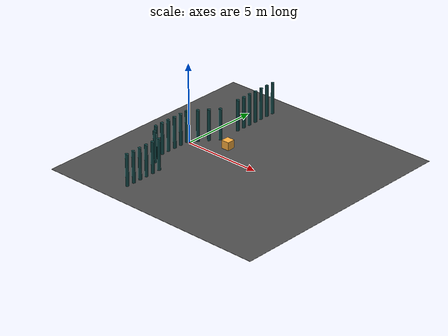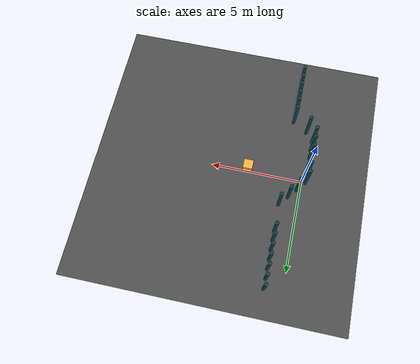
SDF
<sdf version="1.6">
 <world name="default">
  <light name="sun" type="directional">
   <pose>0 0 10 0 -0 0</pose>
   <diffuse>0.8 0.8 0.8 1</diffuse>
   <specular>0.2 0.2 0.2 1</specular>
   <attenuation>
    <range>1000</range>
    <constant>0.9</constant>
    <linear>0.01</linear>
    <quadratic>0.001</quadratic>
   </attenuation>
   <direction>-0.5 0.1 -0.9</direction>
  </light>
  <plugin name="ros_interface_plugin" filename="librotors_gazebo_ros_interface_plugin.so"/>
  <gravity>0 0 -9.8</gravity>
  <magnetic_field>6e-06 2.3e-05 -4.2e-05</magnetic_field>
  <atmosphere type="adiabatic"/>
  <physics name="default_physics" default="0" type="ode">
   <max_step_size>0.001</max_step_size>
   <real_time_factor>1</real_time_factor>
   <real_time_update_rate>1000</real_time_update_rate>
  </physics>
  <scene>
   <ambient>0.78 0.78 0.78 1</ambient>
   <background>0.35 0.35 0.35 1</background>
   <shadows>1</shadows>
  </scene>
  <spherical_coordinates>
   <surface_model>EARTH_WGS84</surface_model>
   <latitude_deg>0</latitude_deg>
   <longitude_deg>0</longitude_deg>
   <elevation>0</elevation>
   <heading_deg>0</heading_deg>
  </spherical_coordinates>
  <model name="env_plane">
   <link name="link">
    <inertial>
     <mass>1</mass>
     <inertia><ixx>1</ixx><ixy>0</ixy><ixz>0</ixz><iyy>1</iyy><iyz>0</iyz><izz>1</izz></inertia>
    </inertial>
    <visual name="visual">
     <cast_shadows>0</cast_shadows>
     <geometry><box><size>15 15 0.01</size></box></geometry>
     <material>
      <script>
       <uri>model://asphalt_plane/materials/scripts</uri>
       <uri>model://asphalt_plane/materials/textures</uri>
       <name>vrc/asphalt</name>
      </script>
      <shader type="pixel"><normal_map>__default__</normal_map></shader>
      <diffuse>0.7 0.7 0.7 1</diffuse>
      <ambient>0.5 0.5 0.5 1</ambient>
      <specular>0.5 0.5 0.5 1</specular>
      <emissive>0.7 0.7 0.7 1</emissive>
     </material>
    </visual>
    <collision name="collision">
     <geometry><box><size>20 20 0.1</size></box></geometry>
     <surface>
      <friction>
       <ode><mu>1</mu><mu2>1</mu2><fdir1>0 0 0</fdir1><slip1>0</slip1><slip2>0</slip2></ode>
       <torsional>
        <coefficient>1</coefficient>
        <patch_radius>0</patch_radius>
        <surface_radius>0</surface_radius>
        <use_patch_radius>1</use_patch_radius>
        <ode><slip>0</slip></ode>
       </torsional>
      </friction>
      <bounce><restitution_coefficient>0</restitution_coefficient><threshold>1e+06</threshold></bounce>
      <contact>
       <collide_without_contact>0</collide_without_contact>
       <collide_without_contact_bitmask>1</collide_without_contact_bitmask>
       <collide_bitmask>1</collide_bitmask>
       <ode>
        <soft_cfm>0</soft_cfm>
        <soft_erp>0.2</soft_erp>
        <kp>1e+13</kp>
        <kd>1</kd>
        <max_vel>0.01</max_vel>
        <min_depth>0</min_depth>
       </ode>
       <bullet>
        <split_impulse>1</split_impulse>
        <split_impulse_penetration_threshold>-0.01</split_impulse_penetration_threshold>
        <soft_cfm>0</soft_cfm>
        <soft_erp>0.2</soft_erp>
        <kp>1e+13</kp>
        <kd>1</kd>
       </bullet>
      </contact>
     </surface>
    </collision>
   </link>
   <static>1</static>
   <pose>4 0 0 0 -0 0</pose>
  </model>
  <model name="obstacle">
   <link name="link">
    <inertial>
     <mass>112.569</mass>
     <inertia><ixx>33.2512</ixx><ixy>0</ixy><ixz>0</ixz><iyy>33.2512</iyy><iyz>0</iyz><izz>0.537779</izz></inertia>
    </inertial>
    <visual name="visual">
     <geometry><cylinder><radius>0.1</radius><length>2</length></cylinder></geometry>
     <material>
      <script><name>Gazebo/Grey</name><uri>file://media/materials/scripts/gazebo.material</uri></script>
      <shader type="pixel"><normal_map>__default__</normal_map></shader>
      <ambient>0.05 0.25 0.25 1</ambient>
      <diffuse>0.3 0.3 0.3 1</diffuse>
      <specular>0.01 0.01 0.01 1</specular>
      <emissive>0.1 0.1 0.1 1</emissive>
      <lighting>1</lighting>
     </material>
    </visual>
    <collision name="collision">
     <geometry><cylinder><radius>0.097748</radius><length>1.87509</length></cylinder></geometry>
     <surface>
      <friction>
       <ode><mu>1</mu><mu2>1</mu2><fdir1>0 0 0</fdir1><slip1>0</slip1><slip2>0</slip2></ode>
       <torsional>
        <coefficient>1</coefficient>
        <patch_radius>0</patch_radius>
        <surface_radius>0</surface_radius>
        <use_patch_radius>1</use_patch_radius>
        <ode><slip>0</slip></ode>
       </torsional>
      </friction>
      <bounce><restitution_coefficient>0</restitution_coefficient><threshold>1e+06</threshold></bounce>
      <contact>
       <collide_without_contact>0</collide_without_contact>
       <collide_without_contact_bitmask>1</collide_without_contact_bitmask>
       <collide_bitmask>1</collide_bitmask>
       <ode>
        <soft_cfm>0</soft_cfm>
        <soft_erp>0.2</soft_erp>
        <kp>1e+13</kp>
        <kd>1</kd>
        <max_vel>0.01</max_vel>
        <min_depth>0</min_depth>
       </ode>
       <bullet>
        <split_impulse>1</split_impulse>
        <split_impulse_penetration_threshold>-0.01</split_impulse_penetration_threshold>
        <soft_cfm>0</soft_cfm>
        <soft_erp>0.2</soft_erp>
        <kp>1e+13</kp>
        <kd>1</kd>
       </bullet>
      </contact>
     </surface>
    </collision>
   </link>
   <static>0</static>
   <pose>-0.199973 -0.499965 0.987542 -5.4e-05 2.7e-05 0.007392</pose>
  </model>
  <model name="obstacle_clone">
   <link name="link">
    <inertial>
     <mass>112.569</mass>
     <inertia><ixx>33.2512</ixx><ixy>0</ixy><ixz>0</ixz><iyy>33.2512</iyy><iyz>0</iyz><izz>0.537779</izz></inertia>
    </inertial>
    <visual name="visual">
     <geometry><cylinder><radius>0.1</radius><length>2</length></cylinder></geometry>
     <material>
      <script><name>Gazebo/Grey</name><uri>file://media/materials/scripts/gazebo.material</uri></script>
      <shader type="pixel"><normal_map>__default__</normal_map></shader>
      <ambient>0.05 0.25 0.25 1</ambient>
      <diffuse>0.3 0.3 0.3 1</diffuse>
      <specular>0.01 0.01 0.01 1</specular>
      <emissive>0.1 0.1 0.1 1</emissive>
      <lighting>1</lighting>
     </material>
    </visual>
    <collision name="collision">
     <geometry><cylinder><radius>0.097748</radius><length>1.87509</length></cylinder></geometry>
     <surface>
      <friction>
       <ode><mu>1</mu><mu2>1</mu2><fdir1>0 0 0</fdir1><slip1>0</slip1><slip2>0</slip2></ode>
       <torsional>
        <coefficient>1</coefficient>
        <patch_radius>0</patch_radius>
        <surface_radius>0</surface_radius>
        <use_patch_radius>1</use_patch_radius>
        <ode><slip>0</slip></ode>
       </torsional>
      </friction>
      <bounce><restitution_coefficient>0</restitution_coefficient><threshold>1e+06</threshold></bounce>
      <contact>
       <collide_without_contact>0</collide_without_contact>
       <collide_without_contact_bitmask>1</collide_without_contact_bitmask>
       <collide_bitmask>1</collide_bitmask>
       <ode>
        <soft_cfm>0</soft_cfm>
        <soft_erp>0.2</soft_erp>
        <kp>1e+13</kp>
        <kd>1</kd>
        <max_vel>0.01</max_vel>
        <min_depth>0</min_depth>
       </ode>
       <bullet>
        <split_impulse>1</split_impulse>
        <split_impulse_penetration_threshold>-0.01</split_impulse_penetration_threshold>
        <soft_cfm>0</soft_cfm>
        <soft_erp>0.2</soft_erp>
        <kp>1e+13</kp>
        <kd>1</kd>
       </bullet>
      </contact>
     </surface>
    </collision>
   </link>
   <static>0</static>
   <pose>1.00037 4.00004 0.987551 -6.1e-05 2.6e-05 0.007768</pose>
  </model>
  <model name="obstacle_clone_0">
   <link name="link">
    <inertial>
     <mass>112.569</mass>
     <inertia><ixx>33.2512</ixx><ixy>0</ixy><ixz>0</ixz><iyy>33.2512</iyy><iyz>0</iyz><izz>0.537779</izz></inertia>
    </inertial>
    <visual name="visual">
     <geometry><cylinder><radius>0.1</radius><length>2</length></cylinder></geometry>
     <material>
      <script><name>Gazebo/Grey</name><uri>file://media/materials/scripts/gazebo.material</uri></script>
      <shader type="pixel"><normal_map>__default__</normal_map></shader>
      <ambient>0.05 0.25 0.25 1</ambient>
      <diffuse>0.3 0.3 0.3 1</diffuse>
      <specular>0.01 0.01 0.01 1</specular>
      <emissive>0.1 0.1 0.1 1</emissive>
      <lighting>1</lighting>
     </material>
    </visual>
    <collision name="collision">
     <geometry><cylinder><radius>0.097748</radius><length>1.87509</length></cylinder></geometry>
     <surface>
      <friction>
       <ode><mu>1</mu><mu2>1</mu2><fdir1>0 0 0</fdir1><slip1>0</slip1><slip2>0</slip2></ode>
       <torsional>
        <coefficient>1</coefficient>
        <patch_radius>0</patch_radius>
        <surface_radius>0</surface_radius>
        <use_patch_radius>1</use_patch_radius>
        <ode><slip>0</slip></ode>
       </torsional>
      </friction>
      <bounce><restitution_coefficient>0</restitution_coefficient><threshold>1e+06</threshold></bounce>
      <contact>
       <collide_without_contact>0</collide_without_contact>
       <collide_without_contact_bitmask>1</collide_without_contact_bitmask>
       <collide_bitmask>1</collide_bitmask>
       <ode>
        <soft_cfm>0</soft_cfm>
        <soft_erp>0.2</soft_erp>
        <kp>1e+13</kp>
        <kd>1</kd>
        <max_vel>0.01</max_vel>
        <min_depth>0</min_depth>
       </ode>
       <bullet>
        <split_impulse>1</split_impulse>
        <split_impulse_penetration_threshold>-0.01</split_impulse_penetration_threshold>
        <soft_cfm>0</soft_cfm>
        <soft_erp>0.2</soft_erp>
        <kp>1e+13</kp>
        <kd>1</kd>
       </bullet>
      </contact>
     </surface>
    </collision>
   </link>
   <static>0</static>
   <pose>1.03015 1.50004 0.987542 -5.8e-05 2.8e-05 0.00727</pose>
  </model>
  <model name="obstacle_clone_1">
   <link name="link">
    <inertial>
     <mass>112.569</mass>
     <inertia><ixx>33.2512</ixx><ixy>0</ixy><ixz>0</ixz><iyy>33.2512</iyy><iyz>0</iyz><izz>0.537779</izz></inertia>
    </inertial>
    <visual name="visual">
     <geometry><cylinder><radius>0.1</radius><length>2</length></cylinder></geometry>
     <material>
      <script><name>Gazebo/Grey</name><uri>file://media/materials/scripts/gazebo.material</uri></script>
      <shader type="pixel"><normal_map>__default__</normal_map></shader>
      <ambient>0.05 0.25 0.25 1</ambient>
      <diffuse>0.3 0.3 0.3 1</diffuse>
      <specular>0.01 0.01 0.01 1</specular>
      <emissive>0.1 0.1 0.1 1</emissive>
      <lighting>1</lighting>
     </material>
    </visual>
    <collision name="collision">
     <geometry><cylinder><radius>0.097748</radius><length>1.87509</length></cylinder></geometry>
     <surface>
      <friction>
       <ode><mu>1</mu><mu2>1</mu2><fdir1>0 0 0</fdir1><slip1>0</slip1><slip2>0</slip2></ode>
       <torsional>
        <coefficient>1</coefficient>
        <patch_radius>0</patch_radius>
        <surface_radius>0</surface_radius>
        <use_patch_radius>1</use_patch_radius>
        <ode><slip>0</slip></ode>
       </torsional>
      </friction>
      <bounce><restitution_coefficient>0</restitution_coefficient><threshold>1e+06</threshold></bounce>
      <contact>
       <collide_without_contact>0</collide_without_contact>
       <collide_without_contact_bitmask>1</collide_without_contact_bitmask>
       <collide_bitmask>1</collide_bitmask>
       <ode>
        <soft_cfm>0</soft_cfm>
        <soft_erp>0.2</soft_erp>
        <kp>1e+13</kp>
        <kd>1</kd>
        <max_vel>0.01</max_vel>
        <min_depth>0</min_depth>
       </ode>
       <bullet>
        <split_impulse>1</split_impulse>
        <split_impulse_penetration_threshold>-0.01</split_impulse_penetration_threshold>
        <soft_cfm>0</soft_cfm>
        <soft_erp>0.2</soft_erp>
        <kp>1e+13</kp>
        <kd>1</kd>
       </bullet>
      </contact>
     </surface>
    </collision>
   </link>
   <static>0</static>
   <pose>-0.199987 -1.99996 0.987551 -5.6e-05 2.5e-05 0.012254</pose>
  </model>
  <model name="obstacle_clone_4">
   <link name="link">
    <inertial>
     <mass>112.569</mass>
     <inertia><ixx>33.2512</ixx><ixy>0</ixy><ixz>0</ixz><iyy>33.2512</iyy><iyz>0</iyz><izz>0.537779</izz></inertia>
    </inertial>
    <visual name="visual">
     <geometry><cylinder><radius>0.1</radius><length>2</length></cylinder></geometry>
     <material>
      <script><name>Gazebo/Grey</name><uri>file://media/materials/scripts/gazebo.material</uri></script>
      <shader type="pixel"><normal_map>__default__</normal_map></shader>
      <ambient>0.05 0.25 0.25 1</ambient>
      <diffuse>0.3 0.3 0.3 1</diffuse>
      <specular>0.01 0.01 0.01 1</specular>
      <emissive>0.1 0.1 0.1 1</emissive>
      <lighting>1</lighting>
     </material>
    </visual>
    <collision name="collision">
     <geometry><cylinder><radius>0.097748</radius><length>1.87509</length></cylinder></geometry>
     <surface>
      <friction>
       <ode><mu>1</mu><mu2>1</mu2><fdir1>0 0 0</fdir1><slip1>0</slip1><slip2>0</slip2></ode>
       <torsional>
        <coefficient>1</coefficient>
        <patch_radius>0</patch_radius>
        <surface_radius>0</surface_radius>
        <use_patch_radius>1</use_patch_radius>
        <ode><slip>0</slip></ode>
       </torsional>
      </friction>
      <bounce><restitution_coefficient>0</restitution_coefficient><threshold>1e+06</threshold></bounce>
      <contact>
       <collide_without_contact>0</collide_without_contact>
       <collide_without_contact_bitmask>1</collide_without_contact_bitmask>
       <collide_bitmask>1</collide_bitmask>
       <ode>
        <soft_cfm>0</soft_cfm>
        <soft_erp>0.2</soft_erp>
        <kp>1e+13</kp>
        <kd>1</kd>
        <max_vel>0.01</max_vel>
        <min_depth>0</min_depth>
       </ode>
       <bullet>
        <split_impulse>1</split_impulse>
        <split_impulse_penetration_threshold>-0.01</split_impulse_penetration_threshold>
        <soft_cfm>0</soft_cfm>
        <soft_erp>0.2</soft_erp>
        <kp>1e+13</kp>
        <kd>1</kd>
       </bullet>
      </contact>
     </surface>
    </collision>
   </link>
   <static>0</static>
   <pose>1.00021 5.00003 0.987542 -5.5e-05 2.6e-05 0.012053</pose>
  </model>
  <model name="obstacle_clone_7">
   <link name="link">
    <inertial>
     <mass>112.569</mass>
     <inertia><ixx>33.2512</ixx><ixy>0</ixy><ixz>0</ixz><iyy>33.2512</iyy><iyz>0</iyz><izz>0.537779</izz></inertia>
    </inertial>
    <visual name="visual">
     <geometry><cylinder><radius>0.1</radius><length>2</length></cylinder></geometry>
     <material>
      <script><name>Gazebo/Grey</name><uri>file://media/materials/scripts/gazebo.material</uri></script>
      <shader type="pixel"><normal_map>__default__</normal_map></shader>
      <ambient>0.05 0.25 0.25 1</ambient>
      <diffuse>0.3 0.3 0.3 1</diffuse>
      <specular>0.01 0.01 0.01 1</specular>
      <emissive>0.1 0.1 0.1 1</emissive>
      <lighting>1</lighting>
     </material>
    </visual>
    <collision name="collision">
     <geometry><cylinder><radius>0.097748</radius><length>1.87509</length></cylinder></geometry>
     <surface>
      <friction>
       <ode><mu>1</mu><mu2>1</mu2><fdir1>0 0 0</fdir1><slip1>0</slip1><slip2>0</slip2></ode>
       <torsional>
        <coefficient>1</coefficient>
        <patch_radius>0</patch_radius>
        <surface_radius>0</surface_radius>
        <use_patch_radius>1</use_patch_radius>
        <ode><slip>0</slip></ode>
       </torsional>
      </friction>
      <bounce><restitution_coefficient>0</restitution_coefficient><threshold>1e+06</threshold></bounce>
      <contact>
       <collide_without_contact>0</collide_without_contact>
       <collide_without_contact_bitmask>1</collide_without_contact_bitmask>
       <collide_bitmask>1</collide_bitmask>
       <ode>
        <soft_cfm>0</soft_cfm>
        <soft_erp>0.2</soft_erp>
        <kp>1e+13</kp>
        <kd>1</kd>
        <max_vel>0.01</max_vel>
        <min_depth>0</min_depth>
       </ode>
       <bullet>
        <split_impulse>1</split_impulse>
        <split_impulse_penetration_threshold>-0.01</split_impulse_penetration_threshold>
        <soft_cfm>0</soft_cfm>
        <soft_erp>0.2</soft_erp>
        <kp>1e+13</kp>
        <kd>1</kd>
       </bullet>
      </contact>
     </surface>
    </collision>
   </link>
   <static>0</static>
   <pose>0.999995 3.49999 0.987543 -2.7e-05 1.2e-05 0.004903</pose>
  </model>
  <model name="obstacle_clone_9">
   <link name="link">
    <inertial>
     <mass>112.569</mass>
     <inertia><ixx>33.2512</ixx><ixy>0</ixy><ixz>0</ixz><iyy>33.2512</iyy><iyz>0</iyz><izz>0.537779</izz></inertia>
    </inertial>
    <visual name="visual">
     <geometry><cylinder><radius>0.1</radius><length>2</length></cylinder></geometry>
     <material>
      <script><name>Gazebo/Grey</name><uri>file://media/materials/scripts/gazebo.material</uri></script>
      <shader type="pixel"><normal_map>__default__</normal_map></shader>
      <ambient>0.05 0.25 0.25 1</ambient>
      <diffuse>0.3 0.3 0.3 1</diffuse>
      <specular>0.01 0.01 0.01 1</specular>
      <emissive>0.1 0.1 0.1 1</emissive>
      <lighting>1</lighting>
     </material>
    </visual>
    <collision name="collision">
     <geometry><cylinder><radius>0.097748</radius><length>1.87509</length></cylinder></geometry>
     <surface>
      <friction>
       <ode><mu>1</mu><mu2>1</mu2><fdir1>0 0 0</fdir1><slip1>0</slip1><slip2>0</slip2></ode>
       <torsional>
        <coefficient>1</coefficient>
        <patch_radius>0</patch_radius>
        <surface_radius>0</surface_radius>
        <use_patch_radius>1</use_patch_radius>
        <ode><slip>0</slip></ode>
       </torsional>
      </friction>
      <bounce><restitution_coefficient>0</restitution_coefficient><threshold>1e+06</threshold></bounce>
      <contact>
       <collide_without_contact>0</collide_without_contact>
       <collide_without_contact_bitmask>1</collide_without_contact_bitmask>
       <collide_bitmask>1</collide_bitmask>
       <ode>
        <soft_cfm>0</soft_cfm>
        <soft_erp>0.2</soft_erp>
        <kp>1e+13</kp>
        <kd>1</kd>
        <max_vel>0.01</max_vel>
        <min_depth>0</min_depth>
       </ode>
       <bullet>
        <split_impulse>1</split_impulse>
        <split_impulse_penetration_threshold>-0.01</split_impulse_penetration_threshold>
        <soft_cfm>0</soft_cfm>
        <soft_erp>0.2</soft_erp>
        <kp>1e+13</kp>
        <kd>1</kd>
       </bullet>
      </contact>
     </surface>
    </collision>
   </link>
   <static>0</static>
   <pose>-0.199988 -2.49996 0.987542 -5.8e-05 2.9e-05 0.011843</pose>
  </model>
  <model name="obstacle_clone_11">
   <link name="link">
    <inertial>
     <mass>112.569</mass>
     <inertia><ixx>33.2512</ixx><ixy>0</ixy><ixz>0</ixz><iyy>33.2512</iyy><iyz>0</iyz><izz>0.537779</izz></inertia>
    </inertial>
    <visual name="visual">
     <geometry><cylinder><radius>0.1</radius><length>2</length></cylinder></geometry>
     <material>
      <script><name>Gazebo/Grey</name><uri>file://media/materials/scripts/gazebo.material</uri></script>
      <shader type="pixel"><normal_map>__default__</normal_map></shader>
      <ambient>0.05 0.25 0.25 1</ambient>
      <diffuse>0.3 0.3 0.3 1</diffuse>
      <specular>0.01 0.01 0.01 1</specular>
      <emissive>0.1 0.1 0.1 1</emissive>
      <lighting>1</lighting>
     </material>
    </visual>
    <collision name="collision">
     <geometry><cylinder><radius>0.097748</radius><length>1.87509</length></cylinder></geometry>
     <surface>
      <friction>
       <ode><mu>1</mu><mu2>1</mu2><fdir1>0 0 0</fdir1><slip1>0</slip1><slip2>0</slip2></ode>
       <torsional>
        <coefficient>1</coefficient>
        <patch_radius>0</patch_radius>
        <surface_radius>0</surface_radius>
        <use_patch_radius>1</use_patch_radius>
        <ode><slip>0</slip></ode>
       </torsional>
      </friction>
      <bounce><restitution_coefficient>0</restitution_coefficient><threshold>1e+06</threshold></bounce>
      <contact>
       <collide_without_contact>0</collide_without_contact>
       <collide_without_contact_bitmask>1</collide_without_contact_bitmask>
       <collide_bitmask>1</collide_bitmask>
       <ode>
        <soft_cfm>0</soft_cfm>
        <soft_erp>0.2</soft_erp>
        <kp>1e+13</kp>
        <kd>1</kd>
        <max_vel>0.01</max_vel>
        <min_depth>0</min_depth>
       </ode>
       <bullet>
        <split_impulse>1</split_impulse>
        <split_impulse_penetration_threshold>-0.01</split_impulse_penetration_threshold>
        <soft_cfm>0</soft_cfm>
        <soft_erp>0.2</soft_erp>
        <kp>1e+13</kp>
        <kd>1</kd>
       </bullet>
      </contact>
     </surface>
    </collision>
   </link>
   <static>0</static>
   <pose>0.999999 6 0.987543 -2.9e-05 1.1e-05 0.008251</pose>
  </model>
  <model name="obstacle_clone_13">
   <link name="link">
    <inertial>
     <mass>112.569</mass>
     <inertia><ixx>33.2512</ixx><ixy>0</ixy><ixz>0</ixz><iyy>33.2512</iyy><iyz>0</iyz><izz>0.537779</izz></inertia>
    </inertial>
    <visual name="visual">
     <geometry><cylinder><radius>0.1</radius><length>2</length></cylinder></geometry>
     <material>
      <script><name>Gazebo/Grey</name><uri>file://media/materials/scripts/gazebo.material</uri></script>
      <shader type="pixel"><normal_map>__default__</normal_map></shader>
      <ambient>0.05 0.25 0.25 1</ambient>
      <diffuse>0.3 0.3 0.3 1</diffuse>
      <specular>0.01 0.01 0.01 1</specular>
      <emissive>0.1 0.1 0.1 1</emissive>
      <lighting>1</lighting>
     </material>
    </visual>
    <collision name="collision">
     <geometry><cylinder><radius>0.097748</radius><length>1.87509</length></cylinder></geometry>
     <surface>
      <friction>
       <ode><mu>1</mu><mu2>1</mu2><fdir1>0 0 0</fdir1><slip1>0</slip1><slip2>0</slip2></ode>
       <torsional>
        <coefficient>1</coefficient>
        <patch_radius>0</patch_radius>
        <surface_radius>0</surface_radius>
        <use_patch_radius>1</use_patch_radius>
        <ode><slip>0</slip></ode>
       </torsional>
      </friction>
      <bounce><restitution_coefficient>0</restitution_coefficient><threshold>1e+06</threshold></bounce>
      <contact>
       <collide_without_contact>0</collide_without_contact>
       <collide_without_contact_bitmask>1</collide_without_contact_bitmask>
       <collide_bitmask>1</collide_bitmask>
       <ode>
        <soft_cfm>0</soft_cfm>
        <soft_erp>0.2</soft_erp>
        <kp>1e+13</kp>
        <kd>1</kd>
        <max_vel>0.01</max_vel>
        <min_depth>0</min_depth>
       </ode>
       <bullet>
        <split_impulse>1</split_impulse>
        <split_impulse_penetration_threshold>-0.01</split_impulse_penetration_threshold>
        <soft_cfm>0</soft_cfm>
        <soft_erp>0.2</soft_erp>
        <kp>1e+13</kp>
        <kd>1</kd>
       </bullet>
      </contact>
     </surface>
    </collision>
   </link>
   <static>0</static>
   <pose>0.2 0.499992 0.987543 -2.9e-05 1.4e-05 0.003913</pose>
  </model>
  <model name="obstacle_clone_14">
   <link name="link">
    <inertial>
     <mass>112.569</mass>
     <inertia><ixx>33.2512</ixx><ixy>0</ixy><ixz>0</ixz><iyy>33.2512</iyy><iyz>0</iyz><izz>0.537779</izz></inertia>
    </inertial>
    <visual name="visual">
     <geometry><cylinder><radius>0.1</radius><length>2</length></cylinder></geometry>
     <material>
      <script><name>Gazebo/Grey</name><uri>file://media/materials/scripts/gazebo.material</uri></script>
      <shader type="pixel"><normal_map>__default__</normal_map></shader>
      <ambient>0.05 0.25 0.25 1</ambient>
      <diffuse>0.3 0.3 0.3 1</diffuse>
      <specular>0.01 0.01 0.01 1</specular>
      <emissive>0.1 0.1 0.1 1</emissive>
      <lighting>1</lighting>
     </material>
    </visual>
    <collision name="collision">
     <geometry><cylinder><radius>0.097748</radius><length>1.87509</length></cylinder></geometry>
     <surface>
      <friction>
       <ode><mu>1</mu><mu2>1</mu2><fdir1>0 0 0</fdir1><slip1>0</slip1><slip2>0</slip2></ode>
       <torsional>
        <coefficient>1</coefficient>
        <patch_radius>0</patch_radius>
        <surface_radius>0</surface_radius>
        <use_patch_radius>1</use_patch_radius>
        <ode><slip>0</slip></ode>
       </torsional>
      </friction>
      <bounce><restitution_coefficient>0</restitution_coefficient><threshold>1e+06</threshold></bounce>
      <contact>
       <collide_without_contact>0</collide_without_contact>
       <collide_without_contact_bitmask>1</collide_without_contact_bitmask>
       <collide_bitmask>1</collide_bitmask>
       <ode>
        <soft_cfm>0</soft_cfm>
        <soft_erp>0.2</soft_erp>
        <kp>1e+13</kp>
        <kd>1</kd>
        <max_vel>0.01</max_vel>
        <min_depth>0</min_depth>
       </ode>
       <bullet>
        <split_impulse>1</split_impulse>
        <split_impulse_penetration_threshold>-0.01</split_impulse_penetration_threshold>
        <soft_cfm>0</soft_cfm>
        <soft_erp>0.2</soft_erp>
        <kp>1e+13</kp>
        <kd>1</kd>
       </bullet>
      </contact>
     </surface>
    </collision>
   </link>
   <static>0</static>
   <pose>-0.199971 4.7e-05 0.987541 -5.6e-05 2.5e-05 0.011136</pose>
  </model>
  <model name="obstacle_clone_21">
   <link name="link">
    <inertial>
     <mass>112.569</mass>
     <inertia><ixx>33.2512</ixx><ixy>0</ixy><ixz>0</ixz><iyy>33.2512</iyy><iyz>0</iyz><izz>0.537779</izz></inertia>
    </inertial>
    <visual name="visual">
     <geometry><cylinder><radius>0.1</radius><length>2</length></cylinder></geometry>
     <material>
      <script><name>Gazebo/Grey</name><uri>file://media/materials/scripts/gazebo.material</uri></script>
      <shader type="pixel"><normal_map>__default__</normal_map></shader>
      <ambient>0.05 0.25 0.25 1</ambient>
      <diffuse>0.3 0.3 0.3 1</diffuse>
      <specular>0.01 0.01 0.01 1</specular>
      <emissive>0.1 0.1 0.1 1</emissive>
      <lighting>1</lighting>
     </material>
    </visual>
    <collision name="collision">
     <geometry><cylinder><radius>0.097748</radius><length>1.87509</length></cylinder></geometry>
     <surface>
      <friction>
       <ode><mu>1</mu><mu2>1</mu2><fdir1>0 0 0</fdir1><slip1>0</slip1><slip2>0</slip2></ode>
       <torsional>
        <coefficient>1</coefficient>
        <patch_radius>0</patch_radius>
        <surface_radius>0</surface_radius>
        <use_patch_radius>1</use_patch_radius>
        <ode><slip>0</slip></ode>
       </torsional>
      </friction>
      <bounce><restitution_coefficient>0</restitution_coefficient><threshold>1e+06</threshold></bounce>
      <contact>
       <collide_without_contact>0</collide_without_contact>
       <collide_without_contact_bitmask>1</collide_without_contact_bitmask>
       <collide_bitmask>1</collide_bitmask>
       <ode>
        <soft_cfm>0</soft_cfm>
        <soft_erp>0.2</soft_erp>
        <kp>1e+13</kp>
        <kd>1</kd>
        <max_vel>0.01</max_vel>
        <min_depth>0</min_depth>
       </ode>
       <bullet>
        <split_impulse>1</split_impulse>
        <split_impulse_penetration_threshold>-0.01</split_impulse_penetration_threshold>
        <soft_cfm>0</soft_cfm>
        <soft_erp>0.2</soft_erp>
        <kp>1e+13</kp>
        <kd>1</kd>
       </bullet>
      </contact>
     </surface>
    </collision>
   </link>
   <static>0</static>
   <pose>0.600043 1.00004 0.987551 -5.8e-05 2.7e-05 0.01159</pose>
  </model>
  <model name="obstacle_clone_23">
   <link name="link">
    <inertial>
     <mass>112.569</mass>
     <inertia><ixx>33.2512</ixx><ixy>0</ixy><ixz>0</ixz><iyy>33.2512</iyy><iyz>0</iyz><izz>0.537779</izz></inertia>
    </inertial>
    <visual name="visual">
     <geometry><cylinder><radius>0.1</radius><length>2</length></cylinder></geometry>
     <material>
      <script><name>Gazebo/Grey</name><uri>file://media/materials/scripts/gazebo.material</uri></script>
      <shader type="pixel"><normal_map>__default__</normal_map></shader>
      <ambient>0.05 0.25 0.25 1</ambient>
      <diffuse>0.3 0.3 0.3 1</diffuse>
      <specular>0.01 0.01 0.01 1</specular>
      <emissive>0.1 0.1 0.1 1</emissive>
      <lighting>1</lighting>
     </material>
    </visual>
    <collision name="collision">
     <geometry><cylinder><radius>0.097748</radius><length>1.87509</length></cylinder></geometry>
     <surface>
      <friction>
       <ode><mu>1</mu><mu2>1</mu2><fdir1>0 0 0</fdir1><slip1>0</slip1><slip2>0</slip2></ode>
       <torsional>
        <coefficient>1</coefficient>
        <patch_radius>0</patch_radius>
        <surface_radius>0</surface_radius>
        <use_patch_radius>1</use_patch_radius>
        <ode><slip>0</slip></ode>
       </torsional>
      </friction>
      <bounce><restitution_coefficient>0</restitution_coefficient><threshold>1e+06</threshold></bounce>
      <contact>
       <collide_without_contact>0</collide_without_contact>
       <collide_without_contact_bitmask>1</collide_without_contact_bitmask>
       <collide_bitmask>1</collide_bitmask>
       <ode>
        <soft_cfm>0</soft_cfm>
        <soft_erp>0.2</soft_erp>
        <kp>1e+13</kp>
        <kd>1</kd>
        <max_vel>0.01</max_vel>
        <min_depth>0</min_depth>
       </ode>
       <bullet>
        <split_impulse>1</split_impulse>
        <split_impulse_penetration_threshold>-0.01</split_impulse_penetration_threshold>
        <soft_cfm>0</soft_cfm>
        <soft_erp>0.2</soft_erp>
        <kp>1e+13</kp>
        <kd>1</kd>
       </bullet>
      </contact>
     </surface>
    </collision>
   </link>
   <static>0</static>
   <pose>1.00022 4.50003 0.987551 -5.7e-05 2.7e-05 0.01153</pose>
  </model>
  <model name="obstacle_clone_24">
   <link name="link">
    <inertial>
     <mass>112.569</mass>
     <inertia><ixx>33.2512</ixx><ixy>0</ixy><ixz>0</ixz><iyy>33.2512</iyy><iyz>0</iyz><izz>0.537779</izz></inertia>
    </inertial>
    <visual name="visual">
     <geometry><cylinder><radius>0.1</radius><length>2</length></cylinder></geometry>
     <material>
      <script><name>Gazebo/Grey</name><uri>file://media/materials/scripts/gazebo.material</uri></script>
      <shader type="pixel"><normal_map>__default__</normal_map></shader>
      <ambient>0.05 0.25 0.25 1</ambient>
      <diffuse>0.3 0.3 0.3 1</diffuse>
      <specular>0.01 0.01 0.01 1</specular>
      <emissive>0.1 0.1 0.1 1</emissive>
      <lighting>1</lighting>
     </material>
    </visual>
    <collision name="collision">
     <geometry><cylinder><radius>0.097748</radius><length>1.87509</length></cylinder></geometry>
     <surface>
      <friction>
       <ode><mu>1</mu><mu2>1</mu2><fdir1>0 0 0</fdir1><slip1>0</slip1><slip2>0</slip2></ode>
       <torsional>
        <coefficient>1</coefficient>
        <patch_radius>0</patch_radius>
        <surface_radius>0</surface_radius>
        <use_patch_radius>1</use_patch_radius>
        <ode><slip>0</slip></ode>
       </torsional>
      </friction>
      <bounce><restitution_coefficient>0</restitution_coefficient><threshold>1e+06</threshold></bounce>
      <contact>
       <collide_without_contact>0</collide_without_contact>
       <collide_without_contact_bitmask>1</collide_without_contact_bitmask>
       <collide_bitmask>1</collide_bitmask>
       <ode>
        <soft_cfm>0</soft_cfm>
        <soft_erp>0.2</soft_erp>
        <kp>1e+13</kp>
        <kd>1</kd>
        <max_vel>0.01</max_vel>
        <min_depth>0</min_depth>
       </ode>
       <bullet>
        <split_impulse>1</split_impulse>
        <split_impulse_penetration_threshold>-0.01</split_impulse_penetration_threshold>
        <soft_cfm>0</soft_cfm>
        <soft_erp>0.2</soft_erp>
        <kp>1e+13</kp>
        <kd>1</kd>
       </bullet>
      </contact>
     </surface>
    </collision>
   </link>
   <static>0</static>
   <pose>0.200004 -2.99997 0.987551 -5.7e-05 2.5e-05 0.011394</pose>
  </model>
  <model name="obstacle_clone_25">
   <link name="link">
    <inertial>
     <mass>112.569</mass>
     <inertia><ixx>33.2512</ixx><ixy>0</ixy><ixz>0</ixz><iyy>33.2512</iyy><iyz>0</iyz><izz>0.537779</izz></inertia>
    </inertial>
    <visual name="visual">
     <geometry><cylinder><radius>0.1</radius><length>2</length></cylinder></geometry>
     <material>
      <script><name>Gazebo/Grey</name><uri>file://media/materials/scripts/gazebo.material</uri></script>
      <shader type="pixel"><normal_map>__default__</normal_map></shader>
      <ambient>0.05 0.25 0.25 1</ambient>
      <diffuse>0.3 0.3 0.3 1</diffuse>
      <specular>0.01 0.01 0.01 1</specular>
      <emissive>0.1 0.1 0.1 1</emissive>
      <lighting>1</lighting>
     </material>
    </visual>
    <collision name="collision">
     <geometry><cylinder><radius>0.097748</radius><length>1.87509</length></cylinder></geometry>
     <surface>
      <friction>
       <ode><mu>1</mu><mu2>1</mu2><fdir1>0 0 0</fdir1><slip1>0</slip1><slip2>0</slip2></ode>
       <torsional>
        <coefficient>1</coefficient>
        <patch_radius>0</patch_radius>
        <surface_radius>0</surface_radius>
        <use_patch_radius>1</use_patch_radius>
        <ode><slip>0</slip></ode>
       </torsional>
      </friction>
      <bounce><restitution_coefficient>0</restitution_coefficient><threshold>1e+06</threshold></bounce>
      <contact>
       <collide_without_contact>0</collide_without_contact>
       <collide_without_contact_bitmask>1</collide_without_contact_bitmask>
       <collide_bitmask>1</collide_bitmask>
       <ode>
        <soft_cfm>0</soft_cfm>
        <soft_erp>0.2</soft_erp>
        <kp>1e+13</kp>
        <kd>1</kd>
        <max_vel>0.01</max_vel>
        <min_depth>0</min_depth>
       </ode>
       <bullet>
        <split_impulse>1</split_impulse>
        <split_impulse_penetration_threshold>-0.01</split_impulse_penetration_threshold>
        <soft_cfm>0</soft_cfm>
        <soft_erp>0.2</soft_erp>
        <kp>1e+13</kp>
        <kd>1</kd>
       </bullet>
      </contact>
     </surface>
    </collision>
   </link>
   <static>0</static>
   <pose>1.00019 5.5 0.987541 -5.3e-05 2.2e-05 0.011438</pose>
  </model>
  <model name="obstacle_clone_26">
   <link name="link">
    <inertial>
     <mass>112.569</mass>
     <inertia><ixx>33.2512</ixx><ixy>0</ixy><ixz>0</ixz><iyy>33.2512</iyy><iyz>0</iyz><izz>0.537779</izz></inertia>
    </inertial>
    <visual name="visual">
     <geometry><cylinder><radius>0.1</radius><length>2</length></cylinder></geometry>
     <material>
      <script><name>Gazebo/Grey</name><uri>file://media/materials/scripts/gazebo.material</uri></script>
      <shader type="pixel"><normal_map>__default__</normal_map></shader>
      <ambient>0.05 0.25 0.25 1</ambient>
      <diffuse>0.3 0.3 0.3 1</diffuse>
      <specular>0.01 0.01 0.01 1</specular>
      <emissive>0.1 0.1 0.1 1</emissive>
      <lighting>1</lighting>
     </material>
    </visual>
    <collision name="collision">
     <geometry><cylinder><radius>0.097748</radius><length>1.87509</length></cylinder></geometry>
     <surface>
      <friction>
       <ode><mu>1</mu><mu2>1</mu2><fdir1>0 0 0</fdir1><slip1>0</slip1><slip2>0</slip2></ode>
       <torsional>
        <coefficient>1</coefficient>
        <patch_radius>0</patch_radius>
        <surface_radius>0</surface_radius>
        <use_patch_radius>1</use_patch_radius>
        <ode><slip>0</slip></ode>
       </torsional>
      </friction>
      <bounce><restitution_coefficient>0</restitution_coefficient><threshold>1e+06</threshold></bounce>
      <contact>
       <collide_without_contact>0</collide_without_contact>
       <collide_without_contact_bitmask>1</collide_without_contact_bitmask>
       <collide_bitmask>1</collide_bitmask>
       <ode>
        <soft_cfm>0</soft_cfm>
        <soft_erp>0.2</soft_erp>
        <kp>1e+13</kp>
        <kd>1</kd>
        <max_vel>0.01</max_vel>
        <min_depth>0</min_depth>
       </ode>
       <bullet>
        <split_impulse>1</split_impulse>
        <split_impulse_penetration_threshold>-0.01</split_impulse_penetration_threshold>
        <soft_cfm>0</soft_cfm>
        <soft_erp>0.2</soft_erp>
        <kp>1e+13</kp>
        <kd>1</kd>
       </bullet>
      </contact>
     </surface>
    </collision>
   </link>
   <static>0</static>
   <pose>-0.199981 -1.49996 0.987542 -5.8e-05 2.7e-05 0.010242</pose>
  </model>
  <model name="obstacle_clone_29">
   <link name="link">
    <inertial>
     <mass>112.569</mass>
     <inertia><ixx>33.2512</ixx><ixy>0</ixy><ixz>0</ixz><iyy>33.2512</iyy><iyz>0</iyz><izz>0.537779</izz></inertia>
    </inertial>
    <visual name="visual">
     <geometry><cylinder><radius>0.1</radius><length>2</length></cylinder></geometry>
     <material>
      <script><name>Gazebo/Grey</name><uri>file://media/materials/scripts/gazebo.material</uri></script>
      <shader type="pixel"><normal_map>__default__</normal_map></shader>
      <ambient>0.05 0.25 0.25 1</ambient>
      <diffuse>0.3 0.3 0.3 1</diffuse>
      <specular>0.01 0.01 0.01 1</specular>
      <emissive>0.1 0.1 0.1 1</emissive>
      <lighting>1</lighting>
     </material>
    </visual>
    <collision name="collision">
     <geometry><cylinder><radius>0.097748</radius><length>1.87509</length></cylinder></geometry>
     <surface>
      <friction>
       <ode><mu>1</mu><mu2>1</mu2><fdir1>0 0 0</fdir1><slip1>0</slip1><slip2>0</slip2></ode>
       <torsional>
        <coefficient>1</coefficient>
        <patch_radius>0</patch_radius>
        <surface_radius>0</surface_radius>
        <use_patch_radius>1</use_patch_radius>
        <ode><slip>0</slip></ode>
       </torsional>
      </friction>
      <bounce><restitution_coefficient>0</restitution_coefficient><threshold>1e+06</threshold></bounce>
      <contact>
       <collide_without_contact>0</collide_without_contact>
       <collide_without_contact_bitmask>1</collide_without_contact_bitmask>
       <collide_bitmask>1</collide_bitmask>
       <ode>
        <soft_cfm>0</soft_cfm>
        <soft_erp>0.2</soft_erp>
        <kp>1e+13</kp>
        <kd>1</kd>
        <max_vel>0.01</max_vel>
        <min_depth>0</min_depth>
       </ode>
       <bullet>
        <split_impulse>1</split_impulse>
        <split_impulse_penetration_threshold>-0.01</split_impulse_penetration_threshold>
        <soft_cfm>0</soft_cfm>
        <soft_erp>0.2</soft_erp>
        <kp>1e+13</kp>
        <kd>1</kd>
       </bullet>
      </contact>
     </surface>
    </collision>
   </link>
   <static>0</static>
   <pose>1.00036 3.00004 0.987551 -5.9e-05 2.5e-05 0.010857</pose>
  </model>
  <model name="obstacle_clone_31">
   <link name="link">
    <inertial>
     <mass>112.569</mass>
     <inertia><ixx>33.2512</ixx><ixy>0</ixy><ixz>0</ixz><iyy>33.2512</iyy><iyz>0</iyz><izz>0.537779</izz></inertia>
    </inertial>
    <visual name="visual">
     <geometry><cylinder><radius>0.1</radius><length>2</length></cylinder></geometry>
     <material>
      <script><name>Gazebo/Grey</name><uri>file://media/materials/scripts/gazebo.material</uri></script>
      <shader type="pixel"><normal_map>__default__</normal_map></shader>
      <ambient>0.05 0.25 0.25 1</ambient>
      <diffuse>0.3 0.3 0.3 1</diffuse>
      <specular>0.01 0.01 0.01 1</specular>
      <emissive>0.1 0.1 0.1 1</emissive>
      <lighting>1</lighting>
     </material>
    </visual>
    <collision name="collision">
     <geometry><cylinder><radius>0.097748</radius><length>1.87509</length></cylinder></geometry>
     <surface>
      <friction>
       <ode><mu>1</mu><mu2>1</mu2><fdir1>0 0 0</fdir1><slip1>0</slip1><slip2>0</slip2></ode>
       <torsional>
        <coefficient>1</coefficient>
        <patch_radius>0</patch_radius>
        <surface_radius>0</surface_radius>
        <use_patch_radius>1</use_patch_radius>
        <ode><slip>0</slip></ode>
       </torsional>
      </friction>
      <bounce><restitution_coefficient>0</restitution_coefficient><threshold>1e+06</threshold></bounce>
      <contact>
       <collide_without_contact>0</collide_without_contact>
       <collide_without_contact_bitmask>1</collide_without_contact_bitmask>
       <collide_bitmask>1</collide_bitmask>
       <ode>
        <soft_cfm>0</soft_cfm>
        <soft_erp>0.2</soft_erp>
        <kp>1e+13</kp>
        <kd>1</kd>
        <max_vel>0.01</max_vel>
        <min_depth>0</min_depth>
       </ode>
       <bullet>
        <split_impulse>1</split_impulse>
        <split_impulse_penetration_threshold>-0.01</split_impulse_penetration_threshold>
        <soft_cfm>0</soft_cfm>
        <soft_erp>0.2</soft_erp>
        <kp>1e+13</kp>
        <kd>1</kd>
       </bullet>
      </contact>
     </surface>
    </collision>
   </link>
   <static>0</static>
   <pose>-0.199987 -0.999965 0.987541 -5.1e-05 2.1e-05 0.010787</pose>
  </model>
  <model name="obstacle_clone_2">
   <link name="link">
    <inertial>
     <mass>112.569</mass>
     <inertia><ixx>33.2512</ixx><ixy>0</ixy><ixz>0</ixz><iyy>33.2512</iyy><iyz>0</iyz><izz>0.537779</izz></inertia>
    </inertial>
    <visual name="visual">
     <geometry><cylinder><radius>0.1</radius><length>2</length></cylinder></geometry>
     <material>
      <script><name>Gazebo/Grey</name><uri>file://media/materials/scripts/gazebo.material</uri></script>
      <shader type="pixel"><normal_map>__default__</normal_map></shader>
      <ambient>0.05 0.25 0.25 1</ambient>
      <diffuse>0.3 0.3 0.3 1</diffuse>
      <specular>0.01 0.01 0.01 1</specular>
      <emissive>0.1 0.1 0.1 1</emissive>
      <lighting>1</lighting>
     </material>
    </visual>
    <collision name="collision">
     <geometry><cylinder><radius>0.097748</radius><length>1.87509</length></cylinder></geometry>
     <surface>
      <friction>
       <ode><mu>1</mu><mu2>1</mu2><fdir1>0 0 0</fdir1><slip1>0</slip1><slip2>0</slip2></ode>
       <torsional>
        <coefficient>1</coefficient>
        <patch_radius>0</patch_radius>
        <surface_radius>0</surface_radius>
        <use_patch_radius>1</use_patch_radius>
        <ode><slip>0</slip></ode>
       </torsional>
      </friction>
      <bounce><restitution_coefficient>0</restitution_coefficient><threshold>1e+06</threshold></bounce>
      <contact>
       <collide_without_contact>0</collide_without_contact>
       <collide_without_contact_bitmask>1</collide_without_contact_bitmask>
       <collide_bitmask>1</collide_bitmask>
       <ode>
        <soft_cfm>0</soft_cfm>
        <soft_erp>0.2</soft_erp>
        <kp>1e+13</kp>
        <kd>1</kd>
        <max_vel>0.01</max_vel>
        <min_depth>0</min_depth>
       </ode>
       <bullet>
        <split_impulse>1</split_impulse>
        <split_impulse_penetration_threshold>-0.01</split_impulse_penetration_threshold>
        <soft_cfm>0</soft_cfm>
        <soft_erp>0.2</soft_erp>
        <kp>1e+13</kp>
        <kd>1</kd>
       </bullet>
      </contact>
     </surface>
    </collision>
   </link>
   <static>0</static>
   <pose>1.00015 -3.49998 0.987541 -5.4e-05 2.3e-05 0.007375</pose>
  </model>
  <model name="obstacle_clone_3">
   <link name="link">
    <inertial>
     <mass>112.569</mass>
     <inertia><ixx>33.2512</ixx><ixy>0</ixy><ixz>0</ixz><iyy>33.2512</iyy><iyz>0</iyz><izz>0.537779</izz></inertia>
    </inertial>
    <visual name="visual">
     <geometry><cylinder><radius>0.1</radius><length>2</length></cylinder></geometry>
     <material>
      <script><name>Gazebo/Grey</name><uri>file://media/materials/scripts/gazebo.material</uri></script>
      <shader type="pixel"><normal_map>__default__</normal_map></shader>
      <ambient>0.05 0.25 0.25 1</ambient>
      <diffuse>0.3 0.3 0.3 1</diffuse>
      <specular>0.01 0.01 0.01 1</specular>
      <emissive>0.1 0.1 0.1 1</emissive>
      <lighting>1</lighting>
     </material>
    </visual>
    <collision name="collision">
     <geometry><cylinder><radius>0.097748</radius><length>1.87509</length></cylinder></geometry>
     <surface>
      <friction>
       <ode><mu>1</mu><mu2>1</mu2><fdir1>0 0 0</fdir1><slip1>0</slip1><slip2>0</slip2></ode>
       <torsional>
        <coefficient>1</coefficient>
        <patch_radius>0</patch_radius>
        <surface_radius>0</surface_radius>
        <use_patch_radius>1</use_patch_radius>
        <ode><slip>0</slip></ode>
       </torsional>
      </friction>
      <bounce><restitution_coefficient>0</restitution_coefficient><threshold>1e+06</threshold></bounce>
      <contact>
       <collide_without_contact>0</collide_without_contact>
       <collide_without_contact_bitmask>1</collide_without_contact_bitmask>
       <collide_bitmask>1</collide_bitmask>
       <ode>
        <soft_cfm>0</soft_cfm>
        <soft_erp>0.2</soft_erp>
        <kp>1e+13</kp>
        <kd>1</kd>
        <max_vel>0.01</max_vel>
        <min_depth>0</min_depth>
       </ode>
       <bullet>
        <split_impulse>1</split_impulse>
        <split_impulse_penetration_threshold>-0.01</split_impulse_penetration_threshold>
        <soft_cfm>0</soft_cfm>
        <soft_erp>0.2</soft_erp>
        <kp>1e+13</kp>
        <kd>1</kd>
       </bullet>
      </contact>
     </surface>
    </collision>
   </link>
   <static>0</static>
   <pose>1.00014 -3.99998 0.987541 -5.5e-05 2.5e-05 0.007328</pose>
  </model>
  <model name="obstacle_clone_5">
   <link name="link">
    <inertial>
     <mass>112.569</mass>
     <inertia><ixx>33.2512</ixx><ixy>0</ixy><ixz>0</ixz><iyy>33.2512</iyy><iyz>0</iyz><izz>0.537779</izz></inertia>
    </inertial>
    <visual name="visual">
     <geometry><cylinder><radius>0.1</radius><length>2</length></cylinder></geometry>
     <material>
      <script><name>Gazebo/Grey</name><uri>file://media/materials/scripts/gazebo.material</uri></script>
      <shader type="pixel"><normal_map>__default__</normal_map></shader>
      <ambient>0.05 0.25 0.25 1</ambient>
      <diffuse>0.3 0.3 0.3 1</diffuse>
      <specular>0.01 0.01 0.01 1</specular>
      <emissive>0.1 0.1 0.1 1</emissive>
      <lighting>1</lighting>
     </material>
    </visual>
    <collision name="collision">
     <geometry><cylinder><radius>0.097748</radius><length>1.87509</length></cylinder></geometry>
     <surface>
      <friction>
       <ode><mu>1</mu><mu2>1</mu2><fdir1>0 0 0</fdir1><slip1>0</slip1><slip2>0</slip2></ode>
       <torsional>
        <coefficient>1</coefficient>
        <patch_radius>0</patch_radius>
        <surface_radius>0</surface_radius>
        <use_patch_radius>1</use_patch_radius>
        <ode><slip>0</slip></ode>
       </torsional>
      </friction>
      <bounce><restitution_coefficient>0</restitution_coefficient><threshold>1e+06</threshold></bounce>
      <contact>
       <collide_without_contact>0</collide_without_contact>
       <collide_without_contact_bitmask>1</collide_without_contact_bitmask>
       <collide_bitmask>1</collide_bitmask>
       <ode>
        <soft_cfm>0</soft_cfm>
        <soft_erp>0.2</soft_erp>
        <kp>1e+13</kp>
        <kd>1</kd>
        <max_vel>0.01</max_vel>
        <min_depth>0</min_depth>
       </ode>
       <bullet>
        <split_impulse>1</split_impulse>
        <split_impulse_penetration_threshold>-0.01</split_impulse_penetration_threshold>
        <soft_cfm>0</soft_cfm>
        <soft_erp>0.2</soft_erp>
        <kp>1e+13</kp>
        <kd>1</kd>
       </bullet>
      </contact>
     </surface>
    </collision>
   </link>
   <static>0</static>
   <pose>1.00015 -4.49997 0.987551 -6.1e-05 2.8e-05 0.007329</pose>
  </model>
  <model name="obstacle_clone_6">
   <link name="link">
    <inertial>
     <mass>112.569</mass>
     <inertia><ixx>33.2512</ixx><ixy>0</ixy><ixz>0</ixz><iyy>33.2512</iyy><iyz>0</iyz><izz>0.537779</izz></inertia>
    </inertial>
    <visual name="visual">
     <geometry><cylinder><radius>0.1</radius><length>2</length></cylinder></geometry>
     <material>
      <script><name>Gazebo/Grey</name><uri>file://media/materials/scripts/gazebo.material</uri></script>
      <shader type="pixel"><normal_map>__default__</normal_map></shader>
      <ambient>0.05 0.25 0.25 1</ambient>
      <diffuse>0.3 0.3 0.3 1</diffuse>
      <specular>0.01 0.01 0.01 1</specular>
      <emissive>0.1 0.1 0.1 1</emissive>
      <lighting>1</lighting>
     </material>
    </visual>
    <collision name="collision">
     <geometry><cylinder><radius>0.097748</radius><length>1.87509</length></cylinder></geometry>
     <surface>
      <friction>
       <ode><mu>1</mu><mu2>1</mu2><fdir1>0 0 0</fdir1><slip1>0</slip1><slip2>0</slip2></ode>
       <torsional>
        <coefficient>1</coefficient>
        <patch_radius>0</patch_radius>
        <surface_radius>0</surface_radius>
        <use_patch_radius>1</use_patch_radius>
        <ode><slip>0</slip></ode>
       </torsional>
      </friction>
      <bounce><restitution_coefficient>0</restitution_coefficient><threshold>1e+06</threshold></bounce>
      <contact>
       <collide_without_contact>0</collide_without_contact>
       <collide_without_contact_bitmask>1</collide_without_contact_bitmask>
       <collide_bitmask>1</collide_bitmask>
       <ode>
        <soft_cfm>0</soft_cfm>
        <soft_erp>0.2</soft_erp>
        <kp>1e+13</kp>
        <kd>1</kd>
        <max_vel>0.01</max_vel>
        <min_depth>0</min_depth>
       </ode>
       <bullet>
        <split_impulse>1</split_impulse>
        <split_impulse_penetration_threshold>-0.01</split_impulse_penetration_threshold>
        <soft_cfm>0</soft_cfm>
        <soft_erp>0.2</soft_erp>
        <kp>1e+13</kp>
        <kd>1</kd>
       </bullet>
      </contact>
     </surface>
    </collision>
   </link>
   <static>0</static>
   <pose>1.00012 -4.99998 0.987551 -5.4e-05 2.6e-05 0.007157</pose>
  </model>
  <model name="obstacle_clone_8">
   <link name="link">
    <inertial>
     <mass>112.569</mass>
     <inertia><ixx>33.2512</ixx><ixy>0</ixy><ixz>0</ixz><iyy>33.2512</iyy><iyz>0</iyz><izz>0.537779</izz></inertia>
    </inertial>
    <visual name="visual">
     <geometry><cylinder><radius>0.1</radius><length>2</length></cylinder></geometry>
     <material>
      <script><name>Gazebo/Grey</name><uri>file://media/materials/scripts/gazebo.material</uri></script>
      <shader type="pixel"><normal_map>__default__</normal_map></shader>
      <ambient>0.05 0.25 0.25 1</ambient>
      <diffuse>0.3 0.3 0.3 1</diffuse>
      <specular>0.01 0.01 0.01 1</specular>
      <emissive>0.1 0.1 0.1 1</emissive>
      <lighting>1</lighting>
     </material>
    </visual>
    <collision name="collision">
     <geometry><cylinder><radius>0.097748</radius><length>1.87509</length></cylinder></geometry>
     <surface>
      <friction>
       <ode><mu>1</mu><mu2>1</mu2><fdir1>0 0 0</fdir1><slip1>0</slip1><slip2>0</slip2></ode>
       <torsional>
        <coefficient>1</coefficient>
        <patch_radius>0</patch_radius>
        <surface_radius>0</surface_radius>
        <use_patch_radius>1</use_patch_radius>
        <ode><slip>0</slip></ode>
       </torsional>
      </friction>
      <bounce><restitution_coefficient>0</restitution_coefficient><threshold>1e+06</threshold></bounce>
      <contact>
       <collide_without_contact>0</collide_without_contact>
       <collide_without_contact_bitmask>1</collide_without_contact_bitmask>
       <collide_bitmask>1</collide_bitmask>
       <ode>
        <soft_cfm>0</soft_cfm>
        <soft_erp>0.2</soft_erp>
        <kp>1e+13</kp>
        <kd>1</kd>
        <max_vel>0.01</max_vel>
        <min_depth>0</min_depth>
       </ode>
       <bullet>
        <split_impulse>1</split_impulse>
        <split_impulse_penetration_threshold>-0.01</split_impulse_penetration_threshold>
        <soft_cfm>0</soft_cfm>
        <soft_erp>0.2</soft_erp>
        <kp>1e+13</kp>
        <kd>1</kd>
       </bullet>
      </contact>
     </surface>
    </collision>
   </link>
   <static>0</static>
   <pose>1.00012 -5.49998 0.987542 -6.1e-05 2.9e-05 0.007387</pose>
  </model>
  <model name="obstacle_clone_10">
   <link name="link">
    <inertial>
     <mass>112.569</mass>
     <inertia><ixx>33.2512</ixx><ixy>0</ixy><ixz>0</ixz><iyy>33.2512</iyy><iyz>0</iyz><izz>0.537779</izz></inertia>
    </inertial>
    <visual name="visual">
     <geometry><cylinder><radius>0.1</radius><length>2</length></cylinder></geometry>
     <material>
      <script><name>Gazebo/Grey</name><uri>file://media/materials/scripts/gazebo.material</uri></script>
      <shader type="pixel"><normal_map>__default__</normal_map></shader>
      <ambient>0.05 0.25 0.25 1</ambient>
      <diffuse>0.3 0.3 0.3 1</diffuse>
      <specular>0.01 0.01 0.01 1</specular>
      <emissive>0.1 0.1 0.1 1</emissive>
      <lighting>1</lighting>
     </material>
    </visual>
    <collision name="collision">
     <geometry><cylinder><radius>0.097748</radius><length>1.87509</length></cylinder></geometry>
     <surface>
      <friction>
       <ode><mu>1</mu><mu2>1</mu2><fdir1>0 0 0</fdir1><slip1>0</slip1><slip2>0</slip2></ode>
       <torsional>
        <coefficient>1</coefficient>
        <patch_radius>0</patch_radius>
        <surface_radius>0</surface_radius>
        <use_patch_radius>1</use_patch_radius>
        <ode><slip>0</slip></ode>
       </torsional>
      </friction>
      <bounce><restitution_coefficient>0</restitution_coefficient><threshold>1e+06</threshold></bounce>
      <contact>
       <collide_without_contact>0</collide_without_contact>
       <collide_without_contact_bitmask>1</collide_without_contact_bitmask>
       <collide_bitmask>1</collide_bitmask>
       <ode>
        <soft_cfm>0</soft_cfm>
        <soft_erp>0.2</soft_erp>
        <kp>1e+13</kp>
        <kd>1</kd>
        <max_vel>0.01</max_vel>
        <min_depth>0</min_depth>
       </ode>
       <bullet>
        <split_impulse>1</split_impulse>
        <split_impulse_penetration_threshold>-0.01</split_impulse_penetration_threshold>
        <soft_cfm>0</soft_cfm>
        <soft_erp>0.2</soft_erp>
        <kp>1e+13</kp>
        <kd>1</kd>
       </bullet>
      </contact>
     </surface>
    </collision>
   </link>
   <static>0</static>
   <pose>1.00011 -6 0.987541 -5.1e-05 2.5e-05 0.007455</pose>
  </model>
  <model name="destination">
   <link name="link">
    <inertial>
     <mass>0.0182097</mass>
     <inertia>
      <ixx>2.41e-05</ixx>
      <ixy>0</ixy>
      <ixz>0</ixz>
      <iyy>1.97e-05</iyy>
      <iyz>0</iyz>
      <izz>2.207e-05</izz>
     </inertia>
    </inertial>
    <gravity>0</gravity>
    <visual name="visual">
     <geometry><box><size>0.5 0.5 0.5</size></box></geometry>
     <material>
      <script><name>Gazebo/Grey</name><uri>file://media/materials/scripts/gazebo.material</uri></script>
      <shader type="pixel"><normal_map>__default__</normal_map></shader>
      <ambient>0.988 0.686 0.243 1</ambient>
      <diffuse>0.988 0.686 0.243 1</diffuse>
      <specular>0.988 0.686 0.243 1</specular>
      <emissive>0.988 0.686 0.243 1</emissive>
     </material>
    </visual>
    <collision name="collision">
     <geometry><box><size>0.5 0.5 0.5</size></box></geometry>
     <surface>
      <friction>
       <ode><mu>1</mu><mu2>1</mu2><fdir1>0 0 0</fdir1><slip1>0</slip1><slip2>0</slip2></ode>
       <torsional>
        <coefficient>1</coefficient>
        <patch_radius>0</patch_radius>
        <surface_radius>0</surface_radius>
        <use_patch_radius>1</use_patch_radius>
        <ode><slip>0</slip></ode>
       </torsional>
      </friction>
      <bounce><restitution_coefficient>0</restitution_coefficient><threshold>1e+06</threshold></bounce>
      <contact>
       <collide_without_contact>1</collide_without_contact>
       <collide_without_contact_bitmask>1</collide_without_contact_bitmask>
       <collide_bitmask>1</collide_bitmask>
       <ode>
        <soft_cfm>0</soft_cfm>
        <soft_erp>0.2</soft_erp>
        <kp>1e+13</kp>
        <kd>1</kd>
        <max_vel>0.01</max_vel>
        <min_depth>0</min_depth>
       </ode>
       <bullet>
        <split_impulse>1</split_impulse>
        <split_impulse_penetration_threshold>-0.01</split_impulse_penetration_threshold>
        <soft_cfm>0</soft_cfm>
        <soft_erp>0.2</soft_erp>
        <kp>1e+13</kp>
        <kd>1</kd>
       </bullet>
      </contact>
     </surface>
    </collision>
   </link>
   <static>0</static>
   <pose>3 0 1 0 -0 0</pose>
  </model>
 </world>
</sdf>
